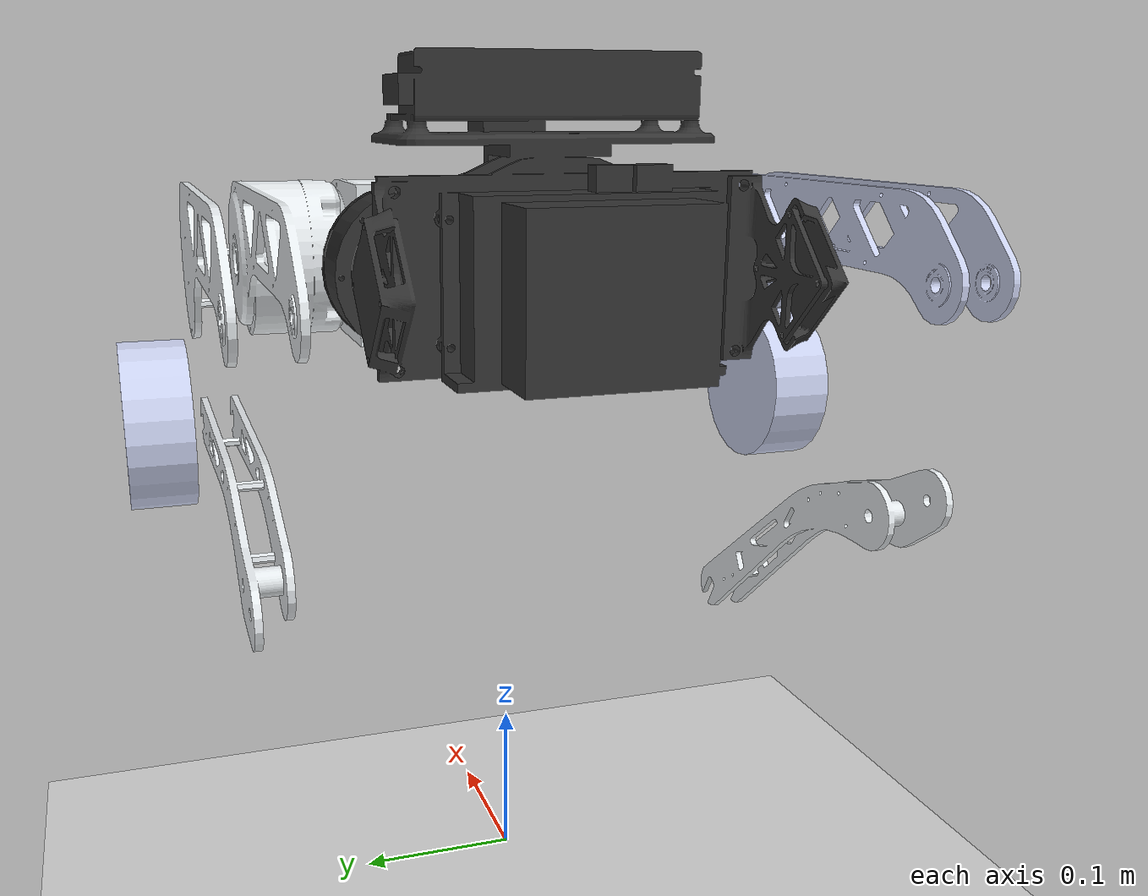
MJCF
<mujoco model="postech">
    <compiler angle="radian" />
    <option timestep="0.005" gravity="0 0 -9.81" iterations="50" integrator="RK4"/>

    <visual>
        <global offwidth="800" offheight="600"/>
        <map znear="0.01" zfar="50" fogstart="3" fogend="10"/>
        <quality shadowsize="2048"/>
    </visual>

    <asset>
        <texture name="skybox" type="skybox" builtin="gradient" rgb1="0.8 0.8 1" rgb2="1 1 1" width="800" height="600"/>
        <texture name="groundplane" type="2d" builtin="checker" width="512" height="512" rgb1="0.9 0.9 0.9" rgb2="0.8 0.8 0.8" mark="edge" markrgb="0.7 0.7 0.7"/>
        <material name="MatPlane" reflectance="0.5" texture="groundplane" texrepeat="1 1" texuniform="true"/>
    </asset>

    <worldbody>
        <geom name="ground" pos="0 0 0" size="40 40 0.1" type="plane" material="MatPlane" condim="3" friction="1 0 0"/>
        <body name="base_link" pos="0 0 0.5">
            <inertial pos="0 0 0" mass="3.7604" diaginertia="0.02137315 0.01605194 0.02335418" />
            <geom type="mesh" mesh="base_link_mesh" rgba="0.2 0.2 0.2 1" />
            <site name="base_link_site" pos="0 0 0" size="0.01" rgba="0.2 0.2 0.2 1" />
            <joint name="base_free_joint" type="free" damping="0.0" />

            <!-- left_hip_link 설정 -->
            <body name="left_hip_link" pos="-0.0545 0.08 -0.0803" quat="0.499998 0.5 0.500002 0.5">
                <inertial pos="-0.00017732 1.322e-05 0.00863621" quat="0.999986 -0.00127084 0.00516793 0.000162936" mass="0.768" diaginertia="0.00107545 0.000807431 0.000662285" />
                <joint name="left_hip_joint" pos="0 0 0" axis="0 0 1" limited="true" range="-0.383972 0.7854" />
                <geom type="mesh" rgba="0.89804 0.91765 0.92941 1" mesh="left_hip_link_mesh" />
                <body name="left_shoulder_link" pos="0.0265 0 0.06" quat="0.707105 0 0.707108 0">
                    <inertial pos="0.128393 0.00128771 0.0585423" quat="-0.0739802 0.663819 -0.037255 0.743292" mass="0.926" diaginertia="0.00520947 0.00517149 0.000906348" />
                    <joint name="left_shoulder_joint" pos="0 0 0" axis="0 0 1" limited="true" range="0 1.5708" />
                    <geom type="mesh" rgba="0.898039 0.917647 0.929412 1" mesh="left_shoulder_link_mesh" />
                    <body name="left_leg_link" pos="0.17097 -0.13845 0.07005">
                        <inertial pos="-0.0820173 -0.0247145 -0.00121501" quat="-0.140882 0.690755 0.143041 0.694658" mass="0.187" diaginertia="0.000994622 0.000972557 3.84303e-05" />
                        <joint name="left_leg_joint" pos="0 0 0" axis="0 0 1" limited="true" range="0 1.5708" />
                        <geom type="mesh" rgba="0.898039 0.917647 0.929412 1" mesh="left_leg_link_mesh" />
                        <body name="left_wheel_link" pos="-0.21779 0.031096 0.039877">
                            <inertial pos="9.6e-05 -7.267e-05 -0.00086593" quat="0.632886 0.315349 -0.632893 0.315369" mass="1.515" diaginertia="0.00182156 0.0013561 0.00135552" />
                            <joint name="left_wheel_joint" pos="0 0 0" axis="0 0 1" type="hinge"/>
                            <geom size="0.053 0.020375" type="cylinder" rgba="0.792157 0.819608 0.933333 1" friction="1.0 0.005 0.0001" material="rubber" />
                        </body>
                    </body>
                </body>
            </body>
            <body name="right_hip_link" pos="-0.0545 -0.08 -0.0803" quat="0.499998 0.5 0.500002 0.5">
                <inertial pos="0.1287 -0.00147834 0.0586879" quat="0.0759351 0.66374 0.0388159 0.743086" mass="0.926" diaginertia="0.00521008 0.00517207 0.000906255" />
                <joint name="right_hip_joint" pos="0 0 0" axis="0 0 1" limited="true" range="-0.7854 0.383972" />
                <geom type="mesh" rgba="0.898039 0.917647 0.929412 1" mesh="right_hip_link_mesh" />
                <body name="right_shoulder_link" pos="-0.0265 0 0.06" quat="-2.59734e-06 0.707105 -2.59735e-06 -0.707108">
                    <inertial pos="0.1287 -0.00147834 0.0586879" quat="0.0759351 0.66374 0.0388159 0.743086" mass="0.926" diaginertia="0.00521008 0.00517207 0.000906255" />
                    <joint name="right_shoulder_joint" pos="0 0 0" axis="0 0 -1" limited="true" range="0 1.5708" />
                    <geom type="mesh" rgba="0.792157 0.819608 0.933333 1" mesh="right_shoulder_link_mesh" />
                    <body name="right_leg_link" pos="0.17097 0.13845 0.07005">
                        <inertial pos="-0.082015 0.0247171 0.00166798" quat="0.140882 0.690755 -0.143041 0.694658" mass="0.187" diaginertia="0.000994622 0.000972557 3.84303e-05" />
                        <joint name="right_leg_joint" pos="0 0 0" axis="0 0 -1" limited="true" range="0 1.5708" />
                        <geom type="mesh" rgba="0.898039 0.917647 0.929412 1" mesh="right_leg_link_mesh" />
                        <body name="right_wheel_link" pos="-0.21779 -0.031096 0.039877">
                            <inertial pos="-9.6e-05 -7.267e-05 -0.00086593" quat="0.315369 0.632893 -0.315349 0.632886" mass="1.52" diaginertia="0.00182758 0.00136057 0.00135999" />
                            <joint name="right_wheel_joint" pos="0 0 0" axis="0 0 -1" type="hinge"/>
                            <geom size="0.053 0.020375" type="cylinder" rgba="0.792157 0.819608 0.933333 1" friction="1.0 0.005 0.0001" material="rubber" />
                        </body>
                    </body>
                </body>
            </body>
        </body>
    </worldbody>

    <asset>
        <material name="rubber" rgba="0.1 0.1 0.1 1" shininess="0.5" reflectance="0.2"/>
        <mesh name="base_link_mesh" file="./meshes/base_link.STL" />
        <mesh name="left_hip_link_mesh" file="./meshes/left_hip_link.STL" />
        <mesh name="left_shoulder_link_mesh" file="./meshes/left_shoulder_link.STL" />
        <mesh name="left_leg_link_mesh" file="./meshes/left_leg_link.STL" />
        <mesh name="right_hip_link_mesh" file="./meshes/right_hip_link.STL" />
        <mesh name="right_shoulder_link_mesh" file="./meshes/right_shoulder_link.STL" />
        <mesh name="right_leg_link_mesh" file="./meshes/right_leg_link.STL" />
    </asset>

    <actuator>
        <motor joint="left_hip_joint" ctrllimited="true" ctrlrange="-24 24" gear="1"/>
        <motor joint="left_shoulder_joint" ctrllimited="true" ctrlrange="-24 24" gear="1"/>
        <motor joint="left_leg_joint" ctrllimited="true" ctrlrange="-24 24" gear="1"/>
        <motor joint="left_wheel_joint" ctrllimited="true" ctrlrange="-6 6" gear="1"/>
        <motor joint="right_hip_joint" ctrllimited="true" ctrlrange="-24 24" gear="1"/>
        <motor joint="right_shoulder_joint" ctrllimited="true" ctrlrange="-24 24" gear="1"/>
        <motor joint="right_leg_joint" ctrllimited="true" ctrlrange="-24 24" gear="1"/>
        <motor joint="right_wheel_joint" ctrllimited="true" ctrlrange="-6 6" gear="1"/>
    </actuator>
</mujoco>
